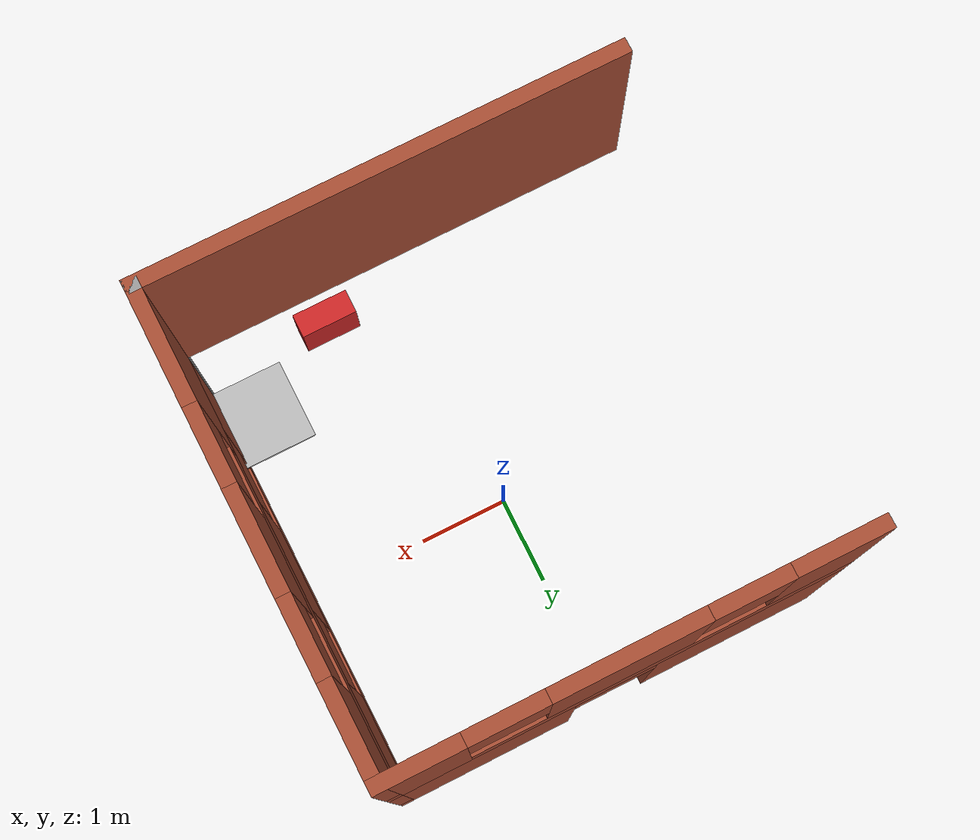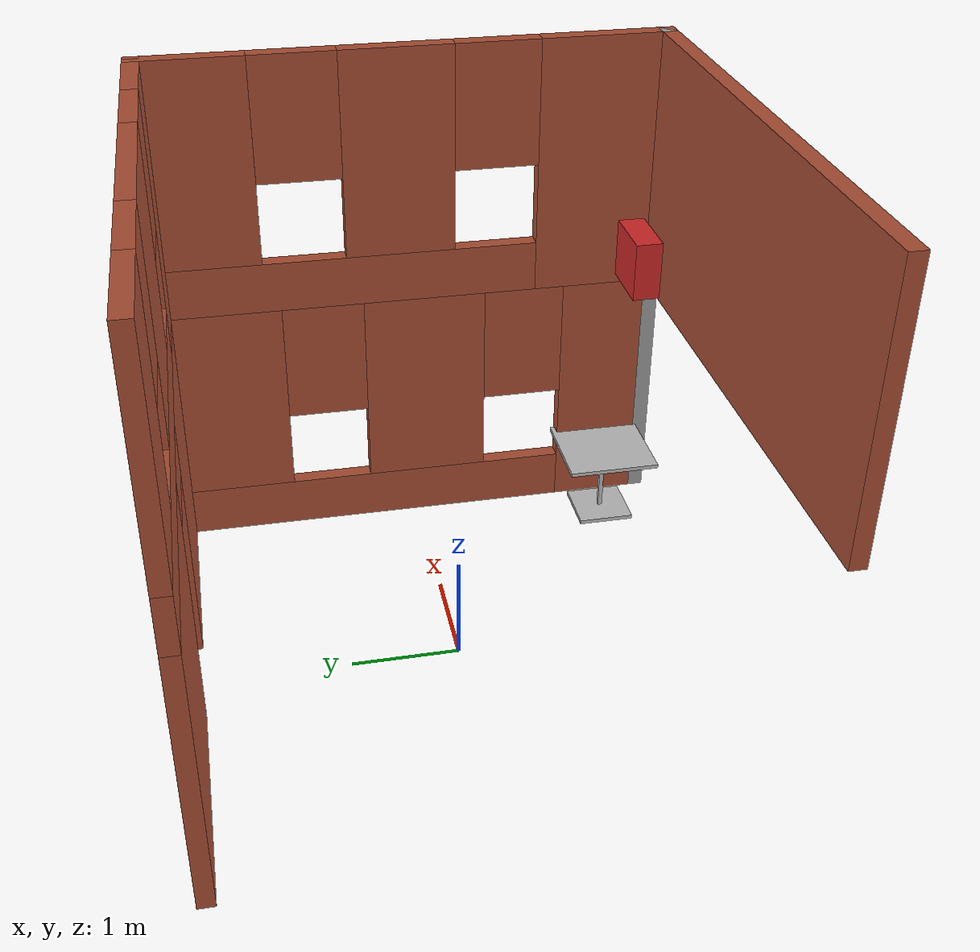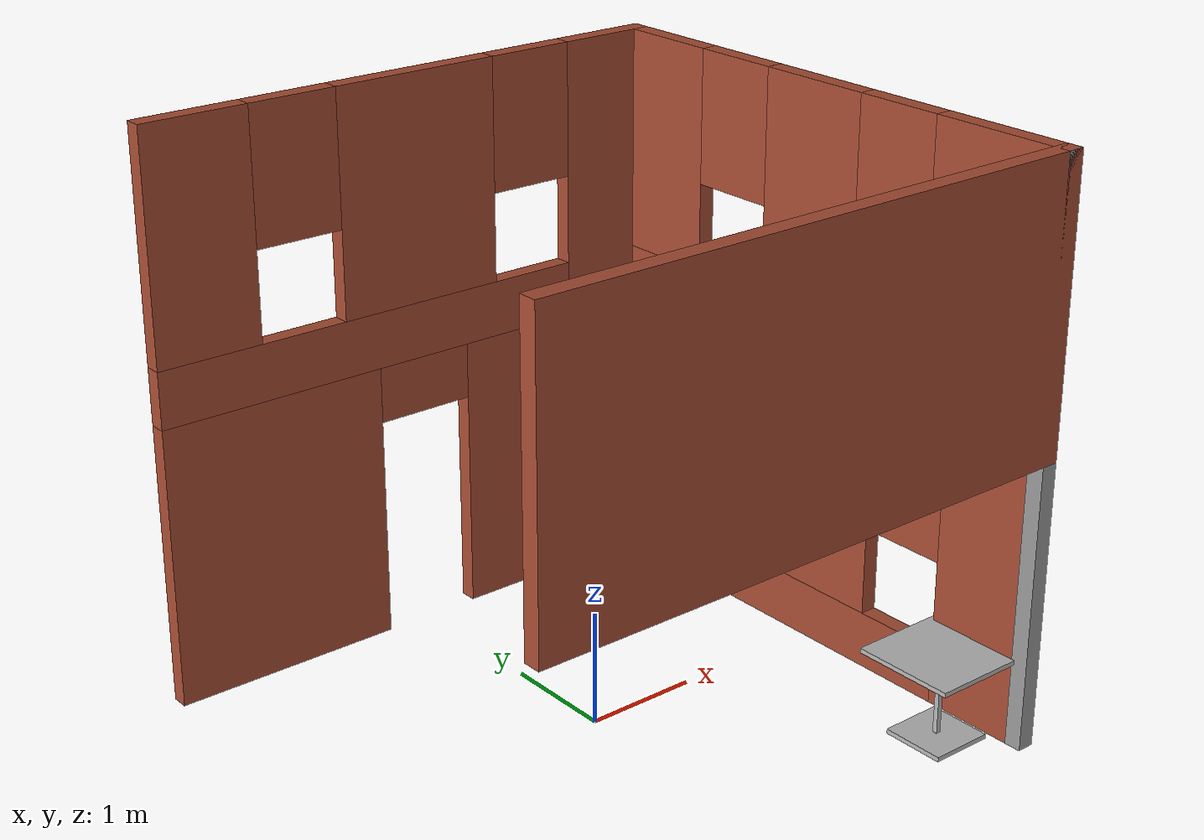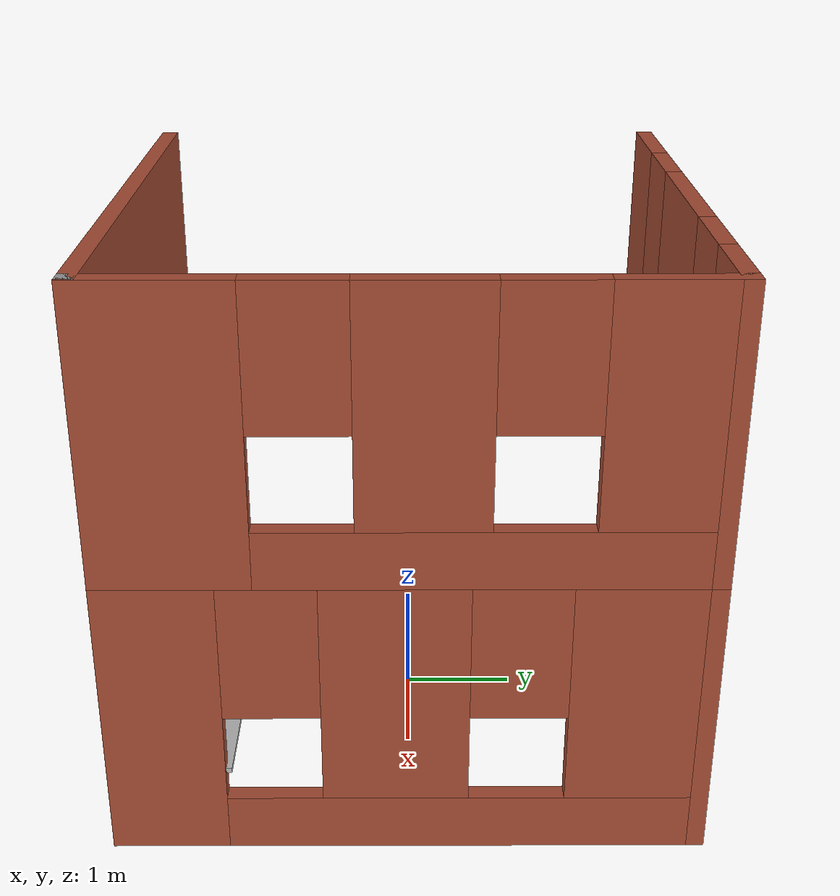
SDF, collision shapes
<sdf version="1.6">
 <model name="building1">
  <link name="Wall_10">
   <pose>0 2.425 2.5 0 -0 3.14159</pose>
   <visual name="Wall_10_Visual_1">
    <pose>0.447808 0 0.25 0 -0 0</pose>
    <geometry><box><size>4.10438 0.15 0.5</size></box></geometry>
    <material>
     <script><uri>file://media/materials/scripts/gazebo.material</uri><name>Gazebo/Bricks</name></script>
     <ambient>1 1 1 1</ambient>
     <shader type="pixel"/>
    </material>
    <meta><layer>1</layer></meta>
   </visual>
   <visual name="Wall_10_Visual_5">
    <pose>1.14562 0 1.9 0 -0 0</pose>
    <geometry><box><size>0.8 0.15 1.2</size></box></geometry>
    <material>
     <script><uri>file://media/materials/scripts/gazebo.material</uri><name>Gazebo/Bricks</name></script>
     <ambient>1 1 1 1</ambient>
     <shader type="pixel"/>
    </material>
    <meta><layer>1</layer></meta>
   </visual>
   <visual name="Wall_10_Visual_0">
    <pose>-2.05219 0 1.25 0 -0 0</pose>
    <geometry><box><size>0.895617 0.15 2.5</size></box></geometry>
    <material>
     <script><uri>file://media/materials/scripts/gazebo.material</uri><name>Gazebo/Bricks</name></script>
     <ambient>1 1 1 1</ambient>
     <shader type="pixel"/>
    </material>
    <meta><layer>1</layer></meta>
   </visual>
   <visual name="Wall_10_Visual_3">
    <pose>2.02281 0 1.5 0 -0 0</pose>
    <geometry><box><size>0.954383 0.15 2</size></box></geometry>
    <material>
     <script><uri>file://media/materials/scripts/gazebo.material</uri><name>Gazebo/Bricks</name></script>
     <ambient>1 1 1 1</ambient>
     <shader type="pixel"/>
    </material>
    <meta><layer>1</layer></meta>
   </visual>
   <visual name="Wall_10_Visual_2">
    <pose>-0.029383 0 1.5 0 -0 0</pose>
    <geometry><box><size>1.55 0.15 2</size></box></geometry>
    <material>
     <script><uri>file://media/materials/scripts/gazebo.material</uri><name>Gazebo/Bricks</name></script>
     <ambient>1 1 1 1</ambient>
     <shader type="pixel"/>
    </material>
    <meta><layer>1</layer></meta>
   </visual>
   <visual name="Wall_10_Visual_4">
    <pose>-1.20438 0 1.9 0 -0 0</pose>
    <geometry><box><size>0.8 0.15 1.2</size></box></geometry>
    <material>
     <script><uri>file://media/materials/scripts/gazebo.material</uri><name>Gazebo/Bricks</name></script>
     <ambient>1 1 1 1</ambient>
     <shader type="pixel"/>
    </material>
    <meta><layer>1</layer></meta>
   </visual>
   <collision name="Wall_10_Collision_2">
    <pose>-0.029383 0 1.5 0 -0 0</pose>
    <geometry><box><size>1.55 0.15 2</size></box></geometry>
    <surface>
     <friction>
      <ode><mu>1</mu><mu2>1</mu2><fdir1>0 0 0</fdir1><slip1>0</slip1><slip2>0</slip2></ode>
      <torsional>
       <coefficient>1</coefficient>
       <patch_radius>0</patch_radius>
       <surface_radius>0</surface_radius>
       <use_patch_radius>1</use_patch_radius>
       <ode><slip>0</slip></ode>
      </torsional>
     </friction>
     <bounce><restitution_coefficient>0</restitution_coefficient><threshold>1e+06</threshold></bounce>
     <contact>
      <collide_without_contact>0</collide_without_contact>
      <collide_without_contact_bitmask>1</collide_without_contact_bitmask>
      <collide_bitmask>1</collide_bitmask>
      <ode>
       <soft_cfm>0</soft_cfm>
       <soft_erp>0.2</soft_erp>
       <kp>1e+13</kp>
       <kd>1</kd>
       <max_vel>0.01</max_vel>
       <min_depth>0</min_depth>
      </ode>
      <bullet>
       <split_impulse>1</split_impulse>
       <split_impulse_penetration_threshold>-0.01</split_impulse_penetration_threshold>
       <soft_cfm>0</soft_cfm>
       <soft_erp>0.2</soft_erp>
       <kp>1e+13</kp>
       <kd>1</kd>
      </bullet>
     </contact>
    </surface>
   </collision>
   <collision name="Wall_10_Collision_1">
    <pose>0.447808 0 0.25 0 -0 0</pose>
    <geometry><box><size>4.10438 0.15 0.5</size></box></geometry>
    <surface>
     <friction>
      <ode><mu>1</mu><mu2>1</mu2><fdir1>0 0 0</fdir1><slip1>0</slip1><slip2>0</slip2></ode>
      <torsional>
       <coefficient>1</coefficient>
       <patch_radius>0</patch_radius>
       <surface_radius>0</surface_radius>
       <use_patch_radius>1</use_patch_radius>
       <ode><slip>0</slip></ode>
      </torsional>
     </friction>
     <bounce><restitution_coefficient>0</restitution_coefficient><threshold>1e+06</threshold></bounce>
     <contact>
      <collide_without_contact>0</collide_without_contact>
      <collide_without_contact_bitmask>1</collide_without_contact_bitmask>
      <collide_bitmask>1</collide_bitmask>
      <ode>
       <soft_cfm>0</soft_cfm>
       <soft_erp>0.2</soft_erp>
       <kp>1e+13</kp>
       <kd>1</kd>
       <max_vel>0.01</max_vel>
       <min_depth>0</min_depth>
      </ode>
      <bullet>
       <split_impulse>1</split_impulse>
       <split_impulse_penetration_threshold>-0.01</split_impulse_penetration_threshold>
       <soft_cfm>0</soft_cfm>
       <soft_erp>0.2</soft_erp>
       <kp>1e+13</kp>
       <kd>1</kd>
      </bullet>
     </contact>
    </surface>
   </collision>
   <collision name="Wall_10_Collision_5">
    <pose>1.14562 0 1.9 0 -0 0</pose>
    <geometry><box><size>0.8 0.15 1.2</size></box></geometry>
    <surface>
     <friction>
      <ode><mu>1</mu><mu2>1</mu2><fdir1>0 0 0</fdir1><slip1>0</slip1><slip2>0</slip2></ode>
      <torsional>
       <coefficient>1</coefficient>
       <patch_radius>0</patch_radius>
       <surface_radius>0</surface_radius>
       <use_patch_radius>1</use_patch_radius>
       <ode><slip>0</slip></ode>
      </torsional>
     </friction>
     <bounce><restitution_coefficient>0</restitution_coefficient><threshold>1e+06</threshold></bounce>
     <contact>
      <collide_without_contact>0</collide_without_contact>
      <collide_without_contact_bitmask>1</collide_without_contact_bitmask>
      <collide_bitmask>1</collide_bitmask>
      <ode>
       <soft_cfm>0</soft_cfm>
       <soft_erp>0.2</soft_erp>
       <kp>1e+13</kp>
       <kd>1</kd>
       <max_vel>0.01</max_vel>
       <min_depth>0</min_depth>
      </ode>
      <bullet>
       <split_impulse>1</split_impulse>
       <split_impulse_penetration_threshold>-0.01</split_impulse_penetration_threshold>
       <soft_cfm>0</soft_cfm>
       <soft_erp>0.2</soft_erp>
       <kp>1e+13</kp>
       <kd>1</kd>
      </bullet>
     </contact>
    </surface>
   </collision>
   <collision name="Wall_10_Collision_0">
    <pose>-2.05219 0 1.25 0 -0 0</pose>
    <geometry><box><size>0.895617 0.15 2.5</size></box></geometry>
    <surface>
     <friction>
      <ode><mu>1</mu><mu2>1</mu2><fdir1>0 0 0</fdir1><slip1>0</slip1><slip2>0</slip2></ode>
      <torsional>
       <coefficient>1</coefficient>
       <patch_radius>0</patch_radius>
       <surface_radius>0</surface_radius>
       <use_patch_radius>1</use_patch_radius>
       <ode><slip>0</slip></ode>
      </torsional>
     </friction>
     <bounce><restitution_coefficient>0</restitution_coefficient><threshold>1e+06</threshold></bounce>
     <contact>
      <collide_without_contact>0</collide_without_contact>
      <collide_without_contact_bitmask>1</collide_without_contact_bitmask>
      <collide_bitmask>1</collide_bitmask>
      <ode>
       <soft_cfm>0</soft_cfm>
       <soft_erp>0.2</soft_erp>
       <kp>1e+13</kp>
       <kd>1</kd>
       <max_vel>0.01</max_vel>
       <min_depth>0</min_depth>
      </ode>
      <bullet>
       <split_impulse>1</split_impulse>
       <split_impulse_penetration_threshold>-0.01</split_impulse_penetration_threshold>
       <soft_cfm>0</soft_cfm>
       <soft_erp>0.2</soft_erp>
       <kp>1e+13</kp>
       <kd>1</kd>
      </bullet>
     </contact>
    </surface>
   </collision>
   <collision name="Wall_10_Collision_4">
    <pose>-1.20438 0 1.9 0 -0 0</pose>
    <geometry><box><size>0.8 0.15 1.2</size></box></geometry>
    <surface>
     <friction>
      <ode><mu>1</mu><mu2>1</mu2><fdir1>0 0 0</fdir1><slip1>0</slip1><slip2>0</slip2></ode>
      <torsional>
       <coefficient>1</coefficient>
       <patch_radius>0</patch_radius>
       <surface_radius>0</surface_radius>
       <use_patch_radius>1</use_patch_radius>
       <ode><slip>0</slip></ode>
      </torsional>
     </friction>
     <bounce><restitution_coefficient>0</restitution_coefficient><threshold>1e+06</threshold></bounce>
     <contact>
      <collide_without_contact>0</collide_without_contact>
      <collide_without_contact_bitmask>1</collide_without_contact_bitmask>
      <collide_bitmask>1</collide_bitmask>
      <ode>
       <soft_cfm>0</soft_cfm>
       <soft_erp>0.2</soft_erp>
       <kp>1e+13</kp>
       <kd>1</kd>
       <max_vel>0.01</max_vel>
       <min_depth>0</min_depth>
      </ode>
      <bullet>
       <split_impulse>1</split_impulse>
       <split_impulse_penetration_threshold>-0.01</split_impulse_penetration_threshold>
       <soft_cfm>0</soft_cfm>
       <soft_erp>0.2</soft_erp>
       <kp>1e+13</kp>
       <kd>1</kd>
      </bullet>
     </contact>
    </surface>
   </collision>
   <collision name="Wall_10_Collision_3">
    <pose>2.02281 0 1.5 0 -0 0</pose>
    <geometry><box><size>0.954383 0.15 2</size></box></geometry>
    <surface>
     <friction>
      <ode><mu>1</mu><mu2>1</mu2><fdir1>0 0 0</fdir1><slip1>0</slip1><slip2>0</slip2></ode>
      <torsional>
       <coefficient>1</coefficient>
       <patch_radius>0</patch_radius>
       <surface_radius>0</surface_radius>
       <use_patch_radius>1</use_patch_radius>
       <ode><slip>0</slip></ode>
      </torsional>
     </friction>
     <bounce><restitution_coefficient>0</restitution_coefficient><threshold>1e+06</threshold></bounce>
     <contact>
      <collide_without_contact>0</collide_without_contact>
      <collide_without_contact_bitmask>1</collide_without_contact_bitmask>
      <collide_bitmask>1</collide_bitmask>
      <ode>
       <soft_cfm>0</soft_cfm>
       <soft_erp>0.2</soft_erp>
       <kp>1e+13</kp>
       <kd>1</kd>
       <max_vel>0.01</max_vel>
       <min_depth>0</min_depth>
      </ode>
      <bullet>
       <split_impulse>1</split_impulse>
       <split_impulse_penetration_threshold>-0.01</split_impulse_penetration_threshold>
       <soft_cfm>0</soft_cfm>
       <soft_erp>0.2</soft_erp>
       <kp>1e+13</kp>
       <kd>1</kd>
      </bullet>
     </contact>
    </surface>
   </collision>
  </link>
  <link name="Wall_2">
   <pose>2.425 -2.425 0 0 -0 0</pose>
   <visual name="Wall_2_Visual">
    <pose>0 0 1.25 0 -0 0</pose>
    <geometry><box><size>0.15 0.15 2.5</size></box></geometry>
    <material>
     <script><uri>file://media/materials/scripts/gazebo.material</uri><name>Gazebo/Grey</name></script>
     <ambient>1 1 1 1</ambient>
     <shader type="pixel"/>
    </material>
    <meta><layer>0</layer></meta>
   </visual>
   <collision name="Wall_2_Collision">
    <pose>0 0 1.25 0 -0 0</pose>
    <geometry><box><size>0.15 0.15 2.5</size></box></geometry>
    <surface>
     <friction>
      <ode><mu>1</mu><mu2>1</mu2><fdir1>0 0 0</fdir1><slip1>0</slip1><slip2>0</slip2></ode>
      <torsional>
       <coefficient>1</coefficient>
       <patch_radius>0</patch_radius>
       <surface_radius>0</surface_radius>
       <use_patch_radius>1</use_patch_radius>
       <ode><slip>0</slip></ode>
      </torsional>
     </friction>
     <bounce><restitution_coefficient>0</restitution_coefficient><threshold>1e+06</threshold></bounce>
     <contact>
      <collide_without_contact>0</collide_without_contact>
      <collide_without_contact_bitmask>1</collide_without_contact_bitmask>
      <collide_bitmask>1</collide_bitmask>
      <ode>
       <soft_cfm>0</soft_cfm>
       <soft_erp>0.2</soft_erp>
       <kp>1e+13</kp>
       <kd>1</kd>
       <max_vel>0.01</max_vel>
       <min_depth>0</min_depth>
      </ode>
      <bullet>
       <split_impulse>1</split_impulse>
       <split_impulse_penetration_threshold>-0.01</split_impulse_penetration_threshold>
       <soft_cfm>0</soft_cfm>
       <soft_erp>0.2</soft_erp>
       <kp>1e+13</kp>
       <kd>1</kd>
      </bullet>
     </contact>
    </surface>
   </collision>
  </link>
  <link name="Wall_3">
   <pose>2.425 0 0 0 -0 1.5708</pose>
   <visual name="Wall_3_Visual_4">
    <pose>-1.11345 0 1.9 0 -0 0</pose>
    <geometry><box><size>0.8 0.15 1.2</size></box></geometry>
    <material>
     <script><uri>file://media/materials/scripts/gazebo.material</uri><name>Gazebo/Bricks</name></script>
     <ambient>1 1 1 1</ambient>
     <shader type="pixel"/>
    </material>
    <meta><layer>0</layer></meta>
   </visual>
   <visual name="Wall_3_Visual_2">
    <pose>-0.109669 0 1.5 0 -0 0</pose>
    <geometry><box><size>1.20755 0.15 2</size></box></geometry>
    <material>
     <script><uri>file://media/materials/scripts/gazebo.material</uri><name>Gazebo/Bricks</name></script>
     <ambient>1 1 1 1</ambient>
     <shader type="pixel"/>
    </material>
    <meta><layer>0</layer></meta>
   </visual>
   <visual name="Wall_3_Visual_1">
    <pose>0.493277 0 0.25 0 -0 0</pose>
    <geometry><box><size>4.01345 0.15 0.5</size></box></geometry>
    <material>
     <script><uri>file://media/materials/scripts/gazebo.material</uri><name>Gazebo/Bricks</name></script>
     <ambient>1 1 1 1</ambient>
     <shader type="pixel"/>
    </material>
    <meta><layer>0</layer></meta>
   </visual>
   <visual name="Wall_3_Visual_5">
    <pose>0.894108 0 1.9 0 -0 0</pose>
    <geometry><box><size>0.8 0.15 1.2</size></box></geometry>
    <material>
     <script><uri>file://media/materials/scripts/gazebo.material</uri><name>Gazebo/Bricks</name></script>
     <ambient>1 1 1 1</ambient>
     <shader type="pixel"/>
    </material>
    <meta><layer>0</layer></meta>
   </visual>
   <visual name="Wall_3_Visual_0">
    <pose>-2.00672 0 1.25 0 -0 0</pose>
    <geometry><box><size>0.986553 0.15 2.5</size></box></geometry>
    <material>
     <script><uri>file://media/materials/scripts/gazebo.material</uri><name>Gazebo/Bricks</name></script>
     <ambient>1 1 1 1</ambient>
     <shader type="pixel"/>
    </material>
    <meta><layer>0</layer></meta>
   </visual>
   <visual name="Wall_3_Visual_3">
    <pose>1.89705 0 1.5 0 -0 0</pose>
    <geometry><box><size>1.20589 0.15 2</size></box></geometry>
    <material>
     <script><uri>file://media/materials/scripts/gazebo.material</uri><name>Gazebo/Bricks</name></script>
     <ambient>1 1 1 1</ambient>
     <shader type="pixel"/>
    </material>
    <meta><layer>0</layer></meta>
   </visual>
   <collision name="Wall_3_Collision_3">
    <pose>1.89705 0 1.5 0 -0 0</pose>
    <geometry><box><size>1.20589 0.15 2</size></box></geometry>
    <surface>
     <friction>
      <ode><mu>1</mu><mu2>1</mu2><fdir1>0 0 0</fdir1><slip1>0</slip1><slip2>0</slip2></ode>
      <torsional>
       <coefficient>1</coefficient>
       <patch_radius>0</patch_radius>
       <surface_radius>0</surface_radius>
       <use_patch_radius>1</use_patch_radius>
       <ode><slip>0</slip></ode>
      </torsional>
     </friction>
     <bounce><restitution_coefficient>0</restitution_coefficient><threshold>1e+06</threshold></bounce>
     <contact>
      <collide_without_contact>0</collide_without_contact>
      <collide_without_contact_bitmask>1</collide_without_contact_bitmask>
      <collide_bitmask>1</collide_bitmask>
      <ode>
       <soft_cfm>0</soft_cfm>
       <soft_erp>0.2</soft_erp>
       <kp>1e+13</kp>
       <kd>1</kd>
       <max_vel>0.01</max_vel>
       <min_depth>0</min_depth>
      </ode>
      <bullet>
       <split_impulse>1</split_impulse>
       <split_impulse_penetration_threshold>-0.01</split_impulse_penetration_threshold>
       <soft_cfm>0</soft_cfm>
       <soft_erp>0.2</soft_erp>
       <kp>1e+13</kp>
       <kd>1</kd>
      </bullet>
     </contact>
    </surface>
   </collision>
   <collision name="Wall_3_Collision_1">
    <pose>0.493277 0 0.25 0 -0 0</pose>
    <geometry><box><size>4.01345 0.15 0.5</size></box></geometry>
    <surface>
     <friction>
      <ode><mu>1</mu><mu2>1</mu2><fdir1>0 0 0</fdir1><slip1>0</slip1><slip2>0</slip2></ode>
      <torsional>
       <coefficient>1</coefficient>
       <patch_radius>0</patch_radius>
       <surface_radius>0</surface_radius>
       <use_patch_radius>1</use_patch_radius>
       <ode><slip>0</slip></ode>
      </torsional>
     </friction>
     <bounce><restitution_coefficient>0</restitution_coefficient><threshold>1e+06</threshold></bounce>
     <contact>
      <collide_without_contact>0</collide_without_contact>
      <collide_without_contact_bitmask>1</collide_without_contact_bitmask>
      <collide_bitmask>1</collide_bitmask>
      <ode>
       <soft_cfm>0</soft_cfm>
       <soft_erp>0.2</soft_erp>
       <kp>1e+13</kp>
       <kd>1</kd>
       <max_vel>0.01</max_vel>
       <min_depth>0</min_depth>
      </ode>
      <bullet>
       <split_impulse>1</split_impulse>
       <split_impulse_penetration_threshold>-0.01</split_impulse_penetration_threshold>
       <soft_cfm>0</soft_cfm>
       <soft_erp>0.2</soft_erp>
       <kp>1e+13</kp>
       <kd>1</kd>
      </bullet>
     </contact>
    </surface>
   </collision>
   <collision name="Wall_3_Collision_4">
    <pose>-1.11345 0 1.9 0 -0 0</pose>
    <geometry><box><size>0.8 0.15 1.2</size></box></geometry>
    <surface>
     <friction>
      <ode><mu>1</mu><mu2>1</mu2><fdir1>0 0 0</fdir1><slip1>0</slip1><slip2>0</slip2></ode>
      <torsional>
       <coefficient>1</coefficient>
       <patch_radius>0</patch_radius>
       <surface_radius>0</surface_radius>
       <use_patch_radius>1</use_patch_radius>
       <ode><slip>0</slip></ode>
      </torsional>
     </friction>
     <bounce><restitution_coefficient>0</restitution_coefficient><threshold>1e+06</threshold></bounce>
     <contact>
      <collide_without_contact>0</collide_without_contact>
      <collide_without_contact_bitmask>1</collide_without_contact_bitmask>
      <collide_bitmask>1</collide_bitmask>
      <ode>
       <soft_cfm>0</soft_cfm>
       <soft_erp>0.2</soft_erp>
       <kp>1e+13</kp>
       <kd>1</kd>
       <max_vel>0.01</max_vel>
       <min_depth>0</min_depth>
      </ode>
      <bullet>
       <split_impulse>1</split_impulse>
       <split_impulse_penetration_threshold>-0.01</split_impulse_penetration_threshold>
       <soft_cfm>0</soft_cfm>
       <soft_erp>0.2</soft_erp>
       <kp>1e+13</kp>
       <kd>1</kd>
      </bullet>
     </contact>
    </surface>
   </collision>
   <collision name="Wall_3_Collision_5">
    <pose>0.894108 0 1.9 0 -0 0</pose>
    <geometry><box><size>0.8 0.15 1.2</size></box></geometry>
    <surface>
     <friction>
      <ode><mu>1</mu><mu2>1</mu2><fdir1>0 0 0</fdir1><slip1>0</slip1><slip2>0</slip2></ode>
      <torsional>
       <coefficient>1</coefficient>
       <patch_radius>0</patch_radius>
       <surface_radius>0</surface_radius>
       <use_patch_radius>1</use_patch_radius>
       <ode><slip>0</slip></ode>
      </torsional>
     </friction>
     <bounce><restitution_coefficient>0</restitution_coefficient><threshold>1e+06</threshold></bounce>
     <contact>
      <collide_without_contact>0</collide_without_contact>
      <collide_without_contact_bitmask>1</collide_without_contact_bitmask>
      <collide_bitmask>1</collide_bitmask>
      <ode>
       <soft_cfm>0</soft_cfm>
       <soft_erp>0.2</soft_erp>
       <kp>1e+13</kp>
       <kd>1</kd>
       <max_vel>0.01</max_vel>
       <min_depth>0</min_depth>
      </ode>
      <bullet>
       <split_impulse>1</split_impulse>
       <split_impulse_penetration_threshold>-0.01</split_impulse_penetration_threshold>
       <soft_cfm>0</soft_cfm>
       <soft_erp>0.2</soft_erp>
       <kp>1e+13</kp>
       <kd>1</kd>
      </bullet>
     </contact>
    </surface>
   </collision>
   <collision name="Wall_3_Collision_2">
    <pose>-0.109669 0 1.5 0 -0 0</pose>
    <geometry><box><size>1.20755 0.15 2</size></box></geometry>
    <surface>
     <friction>
      <ode><mu>1</mu><mu2>1</mu2><fdir1>0 0 0</fdir1><slip1>0</slip1><slip2>0</slip2></ode>
      <torsional>
       <coefficient>1</coefficient>
       <patch_radius>0</patch_radius>
       <surface_radius>0</surface_radius>
       <use_patch_radius>1</use_patch_radius>
       <ode><slip>0</slip></ode>
      </torsional>
     </friction>
     <bounce><restitution_coefficient>0</restitution_coefficient><threshold>1e+06</threshold></bounce>
     <contact>
      <collide_without_contact>0</collide_without_contact>
      <collide_without_contact_bitmask>1</collide_without_contact_bitmask>
      <collide_bitmask>1</collide_bitmask>
      <ode>
       <soft_cfm>0</soft_cfm>
       <soft_erp>0.2</soft_erp>
       <kp>1e+13</kp>
       <kd>1</kd>
       <max_vel>0.01</max_vel>
       <min_depth>0</min_depth>
      </ode>
      <bullet>
       <split_impulse>1</split_impulse>
       <split_impulse_penetration_threshold>-0.01</split_impulse_penetration_threshold>
       <soft_cfm>0</soft_cfm>
       <soft_erp>0.2</soft_erp>
       <kp>1e+13</kp>
       <kd>1</kd>
      </bullet>
     </contact>
    </surface>
   </collision>
   <collision name="Wall_3_Collision_0">
    <pose>-2.00672 0 1.25 0 -0 0</pose>
    <geometry><box><size>0.986553 0.15 2.5</size></box></geometry>
    <surface>
     <friction>
      <ode><mu>1</mu><mu2>1</mu2><fdir1>0 0 0</fdir1><slip1>0</slip1><slip2>0</slip2></ode>
      <torsional>
       <coefficient>1</coefficient>
       <patch_radius>0</patch_radius>
       <surface_radius>0</surface_radius>
       <use_patch_radius>1</use_patch_radius>
       <ode><slip>0</slip></ode>
      </torsional>
     </friction>
     <bounce><restitution_coefficient>0</restitution_coefficient><threshold>1e+06</threshold></bounce>
     <contact>
      <collide_without_contact>0</collide_without_contact>
      <collide_without_contact_bitmask>1</collide_without_contact_bitmask>
      <collide_bitmask>1</collide_bitmask>
      <ode>
       <soft_cfm>0</soft_cfm>
       <soft_erp>0.2</soft_erp>
       <kp>1e+13</kp>
       <kd>1</kd>
       <max_vel>0.01</max_vel>
       <min_depth>0</min_depth>
      </ode>
      <bullet>
       <split_impulse>1</split_impulse>
       <split_impulse_penetration_threshold>-0.01</split_impulse_penetration_threshold>
       <soft_cfm>0</soft_cfm>
       <soft_erp>0.2</soft_erp>
       <kp>1e+13</kp>
       <kd>1</kd>
      </bullet>
     </contact>
    </surface>
   </collision>
  </link>
  <link name="Wall_4">
   <pose>0 2.425 0 0 -0 3.14159</pose>
   <visual name="Wall_4_Visual_1">
    <pose>1.46303 0 1.25 0 -0 0</pose>
    <geometry><box><size>2.07394 0.15 2.5</size></box></geometry>
    <material>
     <script><uri>file://media/materials/scripts/gazebo.material</uri><name>Gazebo/Bricks</name></script>
     <ambient>1 1 1 1</ambient>
     <shader type="pixel"/>
    </material>
    <meta><layer>0</layer></meta>
   </visual>
   <visual name="Wall_4_Visual_2">
    <pose>-0.023941 0 2.25 0 -0 0</pose>
    <geometry><box><size>0.9 0.15 0.5</size></box></geometry>
    <material>
     <script><uri>file://media/materials/scripts/gazebo.material</uri><name>Gazebo/Bricks</name></script>
     <ambient>1 1 1 1</ambient>
     <shader type="pixel"/>
    </material>
    <meta><layer>0</layer></meta>
   </visual>
   <visual name="Wall_4_Visual_0">
    <pose>-1.48697 0 1.25 0 -0 0</pose>
    <geometry><box><size>2.02606 0.15 2.5</size></box></geometry>
    <material>
     <script><uri>file://media/materials/scripts/gazebo.material</uri><name>Gazebo/Bricks</name></script>
     <ambient>1 1 1 1</ambient>
     <shader type="pixel"/>
    </material>
    <meta><layer>0</layer></meta>
   </visual>
   <collision name="Wall_4_Collision_0">
    <pose>-1.48697 0 1.25 0 -0 0</pose>
    <geometry><box><size>2.02606 0.15 2.5</size></box></geometry>
    <surface>
     <friction>
      <ode><mu>1</mu><mu2>1</mu2><fdir1>0 0 0</fdir1><slip1>0</slip1><slip2>0</slip2></ode>
      <torsional>
       <coefficient>1</coefficient>
       <patch_radius>0</patch_radius>
       <surface_radius>0</surface_radius>
       <use_patch_radius>1</use_patch_radius>
       <ode><slip>0</slip></ode>
      </torsional>
     </friction>
     <bounce><restitution_coefficient>0</restitution_coefficient><threshold>1e+06</threshold></bounce>
     <contact>
      <collide_without_contact>0</collide_without_contact>
      <collide_without_contact_bitmask>1</collide_without_contact_bitmask>
      <collide_bitmask>1</collide_bitmask>
      <ode>
       <soft_cfm>0</soft_cfm>
       <soft_erp>0.2</soft_erp>
       <kp>1e+13</kp>
       <kd>1</kd>
       <max_vel>0.01</max_vel>
       <min_depth>0</min_depth>
      </ode>
      <bullet>
       <split_impulse>1</split_impulse>
       <split_impulse_penetration_threshold>-0.01</split_impulse_penetration_threshold>
       <soft_cfm>0</soft_cfm>
       <soft_erp>0.2</soft_erp>
       <kp>1e+13</kp>
       <kd>1</kd>
      </bullet>
     </contact>
    </surface>
   </collision>
   <collision name="Wall_4_Collision_2">
    <pose>-0.023941 0 2.25 0 -0 0</pose>
    <geometry><box><size>0.9 0.15 0.5</size></box></geometry>
    <surface>
     <friction>
      <ode><mu>1</mu><mu2>1</mu2><fdir1>0 0 0</fdir1><slip1>0</slip1><slip2>0</slip2></ode>
      <torsional>
       <coefficient>1</coefficient>
       <patch_radius>0</patch_radius>
       <surface_radius>0</surface_radius>
       <use_patch_radius>1</use_patch_radius>
       <ode><slip>0</slip></ode>
      </torsional>
     </friction>
     <bounce><restitution_coefficient>0</restitution_coefficient><threshold>1e+06</threshold></bounce>
     <contact>
      <collide_without_contact>0</collide_without_contact>
      <collide_without_contact_bitmask>1</collide_without_contact_bitmask>
      <collide_bitmask>1</collide_bitmask>
      <ode>
       <soft_cfm>0</soft_cfm>
       <soft_erp>0.2</soft_erp>
       <kp>1e+13</kp>
       <kd>1</kd>
       <max_vel>0.01</max_vel>
       <min_depth>0</min_depth>
      </ode>
      <bullet>
       <split_impulse>1</split_impulse>
       <split_impulse_penetration_threshold>-0.01</split_impulse_penetration_threshold>
       <soft_cfm>0</soft_cfm>
       <soft_erp>0.2</soft_erp>
       <kp>1e+13</kp>
       <kd>1</kd>
      </bullet>
     </contact>
    </surface>
   </collision>
   <collision name="Wall_4_Collision_1">
    <pose>1.46303 0 1.25 0 -0 0</pose>
    <geometry><box><size>2.07394 0.15 2.5</size></box></geometry>
    <surface>
     <friction>
      <ode><mu>1</mu><mu2>1</mu2><fdir1>0 0 0</fdir1><slip1>0</slip1><slip2>0</slip2></ode>
      <torsional>
       <coefficient>1</coefficient>
       <patch_radius>0</patch_radius>
       <surface_radius>0</surface_radius>
       <use_patch_radius>1</use_patch_radius>
       <ode><slip>0</slip></ode>
      </torsional>
     </friction>
     <bounce><restitution_coefficient>0</restitution_coefficient><threshold>1e+06</threshold></bounce>
     <contact>
      <collide_without_contact>0</collide_without_contact>
      <collide_without_contact_bitmask>1</collide_without_contact_bitmask>
      <collide_bitmask>1</collide_bitmask>
      <ode>
       <soft_cfm>0</soft_cfm>
       <soft_erp>0.2</soft_erp>
       <kp>1e+13</kp>
       <kd>1</kd>
       <max_vel>0.01</max_vel>
       <min_depth>0</min_depth>
      </ode>
      <bullet>
       <split_impulse>1</split_impulse>
       <split_impulse_penetration_threshold>-0.01</split_impulse_penetration_threshold>
       <soft_cfm>0</soft_cfm>
       <soft_erp>0.2</soft_erp>
       <kp>1e+13</kp>
       <kd>1</kd>
      </bullet>
     </contact>
    </surface>
   </collision>
  </link>
  <link name="Wall_7">
   <pose>0 -2.425 2.5 0 -0 0</pose>
   <visual name="Wall_7_Visual">
    <pose>0 0 1.25 0 -0 0</pose>
    <geometry><box><size>5 0.15 2.5</size></box></geometry>
    <material>
     <script><uri>file://media/materials/scripts/gazebo.material</uri><name>Gazebo/Bricks</name></script>
     <ambient>1 1 1 1</ambient>
     <shader type="pixel"/>
    </material>
    <meta><layer>1</layer></meta>
   </visual>
   <collision name="Wall_7_Collision">
    <pose>0 0 1.25 0 -0 0</pose>
    <geometry><box><size>5 0.15 2.5</size></box></geometry>
    <surface>
     <friction>
      <ode><mu>1</mu><mu2>1</mu2><fdir1>0 0 0</fdir1><slip1>0</slip1><slip2>0</slip2></ode>
      <torsional>
       <coefficient>1</coefficient>
       <patch_radius>0</patch_radius>
       <surface_radius>0</surface_radius>
       <use_patch_radius>1</use_patch_radius>
       <ode><slip>0</slip></ode>
      </torsional>
     </friction>
     <bounce><restitution_coefficient>0</restitution_coefficient><threshold>1e+06</threshold></bounce>
     <contact>
      <collide_without_contact>0</collide_without_contact>
      <collide_without_contact_bitmask>1</collide_without_contact_bitmask>
      <collide_bitmask>1</collide_bitmask>
      <ode>
       <soft_cfm>0</soft_cfm>
       <soft_erp>0.2</soft_erp>
       <kp>1e+13</kp>
       <kd>1</kd>
       <max_vel>0.01</max_vel>
       <min_depth>0</min_depth>
      </ode>
      <bullet>
       <split_impulse>1</split_impulse>
       <split_impulse_penetration_threshold>-0.01</split_impulse_penetration_threshold>
       <soft_cfm>0</soft_cfm>
       <soft_erp>0.2</soft_erp>
       <kp>1e+13</kp>
       <kd>1</kd>
      </bullet>
     </contact>
    </surface>
   </collision>
  </link>
  <link name="Wall_8">
   <pose>2.425 -2.425 2.5 0 -0 0</pose>
   <visual name="Wall_8_Visual">
    <pose>0 0 1.25 0 -0 0</pose>
    <geometry><box><size>0.15 0.15 2.5</size></box></geometry>
    <material>
     <script><uri>file://media/materials/scripts/gazebo.material</uri><name>Gazebo/Grey</name></script>
     <ambient>1 1 1 1</ambient>
     <shader type="pixel"/>
    </material>
    <meta><layer>1</layer></meta>
   </visual>
   <collision name="Wall_8_Collision">
    <pose>0 0 1.25 0 -0 0</pose>
    <geometry><box><size>0.15 0.15 2.5</size></box></geometry>
    <surface>
     <friction>
      <ode><mu>1</mu><mu2>1</mu2><fdir1>0 0 0</fdir1><slip1>0</slip1><slip2>0</slip2></ode>
      <torsional>
       <coefficient>1</coefficient>
       <patch_radius>0</patch_radius>
       <surface_radius>0</surface_radius>
       <use_patch_radius>1</use_patch_radius>
       <ode><slip>0</slip></ode>
      </torsional>
     </friction>
     <bounce><restitution_coefficient>0</restitution_coefficient><threshold>1e+06</threshold></bounce>
     <contact>
      <collide_without_contact>0</collide_without_contact>
      <collide_without_contact_bitmask>1</collide_without_contact_bitmask>
      <collide_bitmask>1</collide_bitmask>
      <ode>
       <soft_cfm>0</soft_cfm>
       <soft_erp>0.2</soft_erp>
       <kp>1e+13</kp>
       <kd>1</kd>
       <max_vel>0.01</max_vel>
       <min_depth>0</min_depth>
      </ode>
      <bullet>
       <split_impulse>1</split_impulse>
       <split_impulse_penetration_threshold>-0.01</split_impulse_penetration_threshold>
       <soft_cfm>0</soft_cfm>
       <soft_erp>0.2</soft_erp>
       <kp>1e+13</kp>
       <kd>1</kd>
      </bullet>
     </contact>
    </surface>
   </collision>
  </link>
  <link name="Wall_9">
   <pose>2.425 0 2.5 0 -0 1.5708</pose>
   <visual name="Wall_9_Visual_0">
    <pose>-1.85873 0 1.25 0 -0 0</pose>
    <geometry><box><size>1.28254 0.15 2.5</size></box></geometry>
    <material>
     <script><uri>file://media/materials/scripts/gazebo.material</uri><name>Gazebo/Bricks</name></script>
     <ambient>1 1 1 1</ambient>
     <shader type="pixel"/>
    </material>
    <meta><layer>1</layer></meta>
   </visual>
   <visual name="Wall_9_Visual_1">
    <pose>0.641268 0 0.25 0 -0 0</pose>
    <geometry><box><size>3.71746 0.15 0.5</size></box></geometry>
    <material>
     <script><uri>file://media/materials/scripts/gazebo.material</uri><name>Gazebo/Bricks</name></script>
     <ambient>1 1 1 1</ambient>
     <shader type="pixel"/>
    </material>
    <meta><layer>1</layer></meta>
   </visual>
   <visual name="Wall_9_Visual_2">
    <pose>0.112536 0 1.5 0 -0 0</pose>
    <geometry><box><size>1.06 0.15 2</size></box></geometry>
    <material>
     <script><uri>file://media/materials/scripts/gazebo.material</uri><name>Gazebo/Bricks</name></script>
     <ambient>1 1 1 1</ambient>
     <shader type="pixel"/>
    </material>
    <meta><layer>1</layer></meta>
   </visual>
   <visual name="Wall_9_Visual_3">
    <pose>1.97127 0 1.5 0 -0 0</pose>
    <geometry><box><size>1.05746 0.15 2</size></box></geometry>
    <material>
     <script><uri>file://media/materials/scripts/gazebo.material</uri><name>Gazebo/Bricks</name></script>
     <ambient>1 1 1 1</ambient>
     <shader type="pixel"/>
    </material>
    <meta><layer>1</layer></meta>
   </visual>
   <visual name="Wall_9_Visual_4">
    <pose>-0.817464 0 1.9 0 -0 0</pose>
    <geometry><box><size>0.8 0.15 1.2</size></box></geometry>
    <material>
     <script><uri>file://media/materials/scripts/gazebo.material</uri><name>Gazebo/Bricks</name></script>
     <ambient>1 1 1 1</ambient>
     <shader type="pixel"/>
    </material>
    <meta><layer>1</layer></meta>
   </visual>
   <visual name="Wall_9_Visual_5">
    <pose>1.04254 0 1.9 0 -0 0</pose>
    <geometry><box><size>0.8 0.15 1.2</size></box></geometry>
    <material>
     <script><uri>file://media/materials/scripts/gazebo.material</uri><name>Gazebo/Bricks</name></script>
     <ambient>1 1 1 1</ambient>
     <shader type="pixel"/>
    </material>
    <meta><layer>1</layer></meta>
   </visual>
   <collision name="Wall_9_Collision_0">
    <pose>-1.85873 0 1.25 0 -0 0</pose>
    <geometry><box><size>1.28254 0.15 2.5</size></box></geometry>
    <surface>
     <friction>
      <ode><mu>1</mu><mu2>1</mu2><fdir1>0 0 0</fdir1><slip1>0</slip1><slip2>0</slip2></ode>
      <torsional>
       <coefficient>1</coefficient>
       <patch_radius>0</patch_radius>
       <surface_radius>0</surface_radius>
       <use_patch_radius>1</use_patch_radius>
       <ode><slip>0</slip></ode>
      </torsional>
     </friction>
     <bounce><restitution_coefficient>0</restitution_coefficient><threshold>1e+06</threshold></bounce>
     <contact>
      <collide_without_contact>0</collide_without_contact>
      <collide_without_contact_bitmask>1</collide_without_contact_bitmask>
      <collide_bitmask>1</collide_bitmask>
      <ode>
       <soft_cfm>0</soft_cfm>
       <soft_erp>0.2</soft_erp>
       <kp>1e+13</kp>
       <kd>1</kd>
       <max_vel>0.01</max_vel>
       <min_depth>0</min_depth>
      </ode>
      <bullet>
       <split_impulse>1</split_impulse>
       <split_impulse_penetration_threshold>-0.01</split_impulse_penetration_threshold>
       <soft_cfm>0</soft_cfm>
       <soft_erp>0.2</soft_erp>
       <kp>1e+13</kp>
       <kd>1</kd>
      </bullet>
     </contact>
    </surface>
   </collision>
   <collision name="Wall_9_Collision_1">
    <pose>0.641268 0 0.25 0 -0 0</pose>
    <geometry><box><size>3.71746 0.15 0.5</size></box></geometry>
    <surface>
     <friction>
      <ode><mu>1</mu><mu2>1</mu2><fdir1>0 0 0</fdir1><slip1>0</slip1><slip2>0</slip2></ode>
      <torsional>
       <coefficient>1</coefficient>
       <patch_radius>0</patch_radius>
       <surface_radius>0</surface_radius>
       <use_patch_radius>1</use_patch_radius>
       <ode><slip>0</slip></ode>
      </torsional>
     </friction>
     <bounce><restitution_coefficient>0</restitution_coefficient><threshold>1e+06</threshold></bounce>
     <contact>
      <collide_without_contact>0</collide_without_contact>
      <collide_without_contact_bitmask>1</collide_without_contact_bitmask>
      <collide_bitmask>1</collide_bitmask>
      <ode>
       <soft_cfm>0</soft_cfm>
       <soft_erp>0.2</soft_erp>
       <kp>1e+13</kp>
       <kd>1</kd>
       <max_vel>0.01</max_vel>
       <min_depth>0</min_depth>
      </ode>
      <bullet>
       <split_impulse>1</split_impulse>
       <split_impulse_penetration_threshold>-0.01</split_impulse_penetration_threshold>
       <soft_cfm>0</soft_cfm>
       <soft_erp>0.2</soft_erp>
       <kp>1e+13</kp>
       <kd>1</kd>
      </bullet>
     </contact>
    </surface>
   </collision>
   <collision name="Wall_9_Collision_2">
    <pose>0.112536 0 1.5 0 -0 0</pose>
    <geometry><box><size>1.06 0.15 2</size></box></geometry>
    <surface>
     <friction>
      <ode><mu>1</mu><mu2>1</mu2><fdir1>0 0 0</fdir1><slip1>0</slip1><slip2>0</slip2></ode>
      <torsional>
       <coefficient>1</coefficient>
       <patch_radius>0</patch_radius>
       <surface_radius>0</surface_radius>
       <use_patch_radius>1</use_patch_radius>
       <ode><slip>0</slip></ode>
      </torsional>
     </friction>
     <bounce><restitution_coefficient>0</restitution_coefficient><threshold>1e+06</threshold></bounce>
     <contact>
      <collide_without_contact>0</collide_without_contact>
      <collide_without_contact_bitmask>1</collide_without_contact_bitmask>
      <collide_bitmask>1</collide_bitmask>
      <ode>
       <soft_cfm>0</soft_cfm>
       <soft_erp>0.2</soft_erp>
       <kp>1e+13</kp>
       <kd>1</kd>
       <max_vel>0.01</max_vel>
       <min_depth>0</min_depth>
      </ode>
      <bullet>
       <split_impulse>1</split_impulse>
       <split_impulse_penetration_threshold>-0.01</split_impulse_penetration_threshold>
       <soft_cfm>0</soft_cfm>
       <soft_erp>0.2</soft_erp>
       <kp>1e+13</kp>
       <kd>1</kd>
      </bullet>
     </contact>
    </surface>
   </collision>
   <collision name="Wall_9_Collision_3">
    <pose>1.97127 0 1.5 0 -0 0</pose>
    <geometry><box><size>1.05746 0.15 2</size></box></geometry>
    <surface>
     <friction>
      <ode><mu>1</mu><mu2>1</mu2><fdir1>0 0 0</fdir1><slip1>0</slip1><slip2>0</slip2></ode>
      <torsional>
       <coefficient>1</coefficient>
       <patch_radius>0</patch_radius>
       <surface_radius>0</surface_radius>
       <use_patch_radius>1</use_patch_radius>
       <ode><slip>0</slip></ode>
      </torsional>
     </friction>
     <bounce><restitution_coefficient>0</restitution_coefficient><threshold>1e+06</threshold></bounce>
     <contact>
      <collide_without_contact>0</collide_without_contact>
      <collide_without_contact_bitmask>1</collide_without_contact_bitmask>
      <collide_bitmask>1</collide_bitmask>
      <ode>
       <soft_cfm>0</soft_cfm>
       <soft_erp>0.2</soft_erp>
       <kp>1e+13</kp>
       <kd>1</kd>
       <max_vel>0.01</max_vel>
       <min_depth>0</min_depth>
      </ode>
      <bullet>
       <split_impulse>1</split_impulse>
       <split_impulse_penetration_threshold>-0.01</split_impulse_penetration_threshold>
       <soft_cfm>0</soft_cfm>
       <soft_erp>0.2</soft_erp>
       <kp>1e+13</kp>
       <kd>1</kd>
      </bullet>
     </contact>
    </surface>
   </collision>
   <collision name="Wall_9_Collision_4">
    <pose>-0.817464 0 1.9 0 -0 0</pose>
    <geometry><box><size>0.8 0.15 1.2</size></box></geometry>
    <surface>
     <friction>
      <ode><mu>1</mu><mu2>1</mu2><fdir1>0 0 0</fdir1><slip1>0</slip1><slip2>0</slip2></ode>
      <torsional>
       <coefficient>1</coefficient>
       <patch_radius>0</patch_radius>
       <surface_radius>0</surface_radius>
       <use_patch_radius>1</use_patch_radius>
       <ode><slip>0</slip></ode>
      </torsional>
     </friction>
     <bounce><restitution_coefficient>0</restitution_coefficient><threshold>1e+06</threshold></bounce>
     <contact>
      <collide_without_contact>0</collide_without_contact>
      <collide_without_contact_bitmask>1</collide_without_contact_bitmask>
      <collide_bitmask>1</collide_bitmask>
      <ode>
       <soft_cfm>0</soft_cfm>
       <soft_erp>0.2</soft_erp>
       <kp>1e+13</kp>
       <kd>1</kd>
       <max_vel>0.01</max_vel>
       <min_depth>0</min_depth>
      </ode>
      <bullet>
       <split_impulse>1</split_impulse>
       <split_impulse_penetration_threshold>-0.01</split_impulse_penetration_threshold>
       <soft_cfm>0</soft_cfm>
       <soft_erp>0.2</soft_erp>
       <kp>1e+13</kp>
       <kd>1</kd>
      </bullet>
     </contact>
    </surface>
   </collision>
   <collision name="Wall_9_Collision_5">
    <pose>1.04254 0 1.9 0 -0 0</pose>
    <geometry><box><size>0.8 0.15 1.2</size></box></geometry>
    <surface>
     <friction>
      <ode><mu>1</mu><mu2>1</mu2><fdir1>0 0 0</fdir1><slip1>0</slip1><slip2>0</slip2></ode>
      <torsional>
       <coefficient>1</coefficient>
       <patch_radius>0</patch_radius>
       <surface_radius>0</surface_radius>
       <use_patch_radius>1</use_patch_radius>
       <ode><slip>0</slip></ode>
      </torsional>
     </friction>
     <bounce><restitution_coefficient>0</restitution_coefficient><threshold>1e+06</threshold></bounce>
     <contact>
      <collide_without_contact>0</collide_without_contact>
      <collide_without_contact_bitmask>1</collide_without_contact_bitmask>
      <collide_bitmask>1</collide_bitmask>
      <ode>
       <soft_cfm>0</soft_cfm>
       <soft_erp>0.2</soft_erp>
       <kp>1e+13</kp>
       <kd>1</kd>
       <max_vel>0.01</max_vel>
       <min_depth>0</min_depth>
      </ode>
      <bullet>
       <split_impulse>1</split_impulse>
       <split_impulse_penetration_threshold>-0.01</split_impulse_penetration_threshold>
       <soft_cfm>0</soft_cfm>
       <soft_erp>0.2</soft_erp>
       <kp>1e+13</kp>
       <kd>1</kd>
      </bullet>
     </contact>
    </surface>
   </collision>
  </link>
  <link name="link_1_clone">
   <inertial>
    <mass>0.0689277</mass>
    <inertia>
     <ixx>0.00189334</ixx>
     <ixy>0</ixy>
     <ixz>0</ixz>
     <iyy>0.00334986</iyy>
     <iyz>0</iyz>
     <izz>0.00210027</izz>
    </inertia>
   </inertial>
   <pose>0.978068 -1.80526 3.40252 0 -0 0</pose>
   <gravity>0</gravity>
   <visual name="visual">
    <geometry><box><size>0.556426 0.23672 0.523053</size></box></geometry>
    <material>
     <lighting>1</lighting>
     <script><uri>file://media/materials/scripts/gazebo.material</uri><name>Gazebo/Red</name></script>
     <shader type="pixel"><normal_map>__default__</normal_map></shader>
     <ambient>1 0 0 1</ambient>
     <diffuse>1 0 0 1</diffuse>
     <specular>0.1 0.1 0.1 1</specular>
     <emissive>0 0 0 1</emissive>
    </material>
   </visual>
   <collision name="collision">
    <geometry><box><size>0.556426 0.23672 0.523053</size></box></geometry>
    <surface>
     <friction>
      <ode><mu>1</mu><mu2>1</mu2><fdir1>0 0 0</fdir1><slip1>0</slip1><slip2>0</slip2></ode>
      <torsional>
       <coefficient>1</coefficient>
       <patch_radius>0</patch_radius>
       <surface_radius>0</surface_radius>
       <use_patch_radius>1</use_patch_radius>
       <ode><slip>0</slip></ode>
      </torsional>
     </friction>
     <bounce><restitution_coefficient>0</restitution_coefficient><threshold>1e+06</threshold></bounce>
     <contact>
      <collide_without_contact>0</collide_without_contact>
      <collide_without_contact_bitmask>1</collide_without_contact_bitmask>
      <collide_bitmask>1</collide_bitmask>
      <ode>
       <soft_cfm>0</soft_cfm>
       <soft_erp>0.2</soft_erp>
       <kp>1e+13</kp>
       <kd>1</kd>
       <max_vel>0.01</max_vel>
       <min_depth>0</min_depth>
      </ode>
      <bullet>
       <split_impulse>1</split_impulse>
       <split_impulse_penetration_threshold>-0.01</split_impulse_penetration_threshold>
       <soft_cfm>0</soft_cfm>
       <soft_erp>0.2</soft_erp>
       <kp>1e+13</kp>
       <kd>1</kd>
      </bullet>
     </contact>
    </surface>
   </collision>
  </link>
  <model name="cafe_table">
   <static>1</static>
   <link name="link">
    <collision name="surface">
     <pose>0 0 0.755 0 -0 0</pose>
     <geometry><box><size>0.913 0.913 0.04</size></box></geometry>
    </collision>
    <collision name="column">
     <pose>0 0 0.37 0 -0 0</pose>
     <geometry><box><size>0.042 0.042 0.74</size></box></geometry>
    </collision>
    <collision name="base">
     <pose>0 0 0.02 0 -0 0</pose>
     <geometry><box><size>0.56 0.56 0.04</size></box></geometry>
    </collision>
    <visual name="visual">
     <geometry><mesh><uri>model://cafe_table/meshes/cafe_table.dae</uri></mesh></geometry>
    </visual>
   </link>
   <pose>2.00241 -1.9218 0 0 -0 0</pose>
  </model>
  <static>1</static>
 </model>
</sdf>
